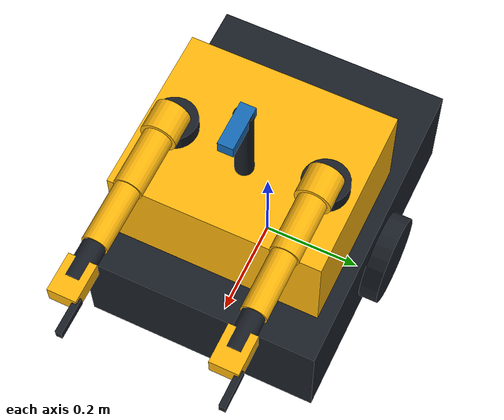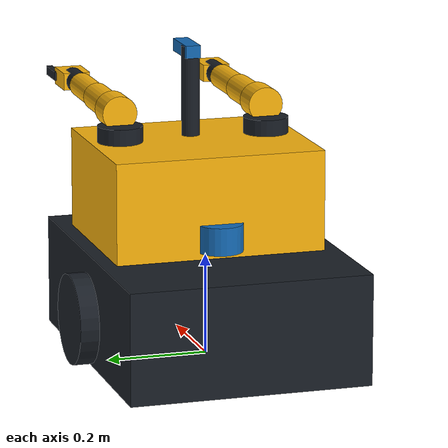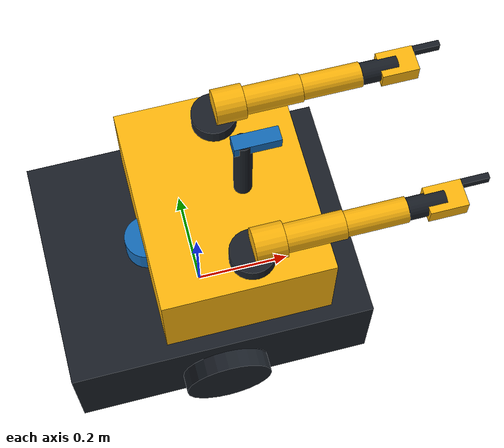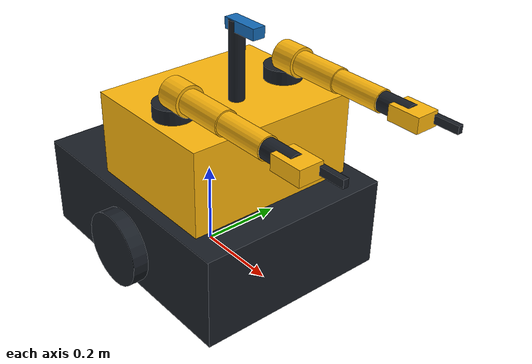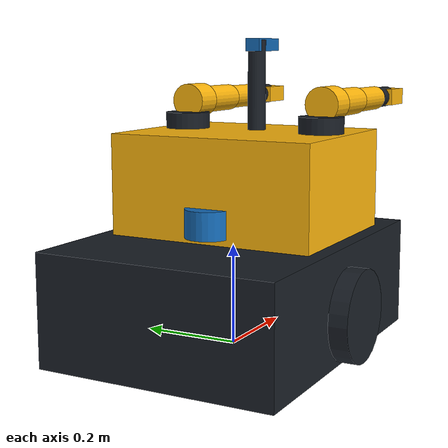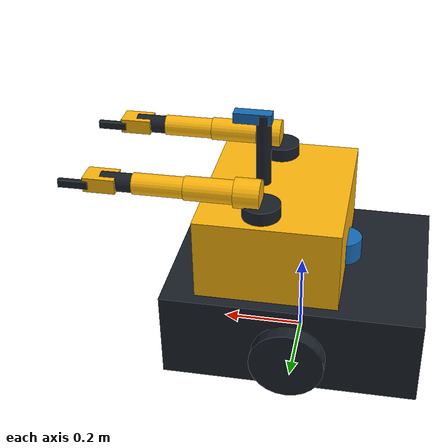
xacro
<?xml version="1.0"?>
<robot name="dual_so101_mobile" xmlns:xacro="http://www.ros.org/wiki/xacro">
  <xacro:arg name="use_mock_hardware" default="true"/>
  <xacro:include filename="so101_arm.xacro"/>
  <xacro:include filename="sensors.xacro"/>
  <xacro:include filename="ros2_control.xacro"/>

  <material name="dark"><color rgba="0.10 0.12 0.15 1"/></material>
  <material name="yellow"><color rgba="1.00 0.72 0.05 1"/></material>
  <material name="sensor_blue"><color rgba="0.08 0.42 0.72 1"/></material>

  <link name="base_footprint"/>
  <link name="base_link">
    <visual><origin xyz="0 0 0.11"/><geometry><box size="0.62 0.48 0.22"/></geometry><material name="dark"/></visual>
    <collision><origin xyz="0 0 0.11"/><geometry><box size="0.62 0.48 0.22"/></geometry></collision>
    <inertial><origin xyz="0 0 0.11"/><mass value="18.0"/><inertia ixx="0.42" ixy="0" ixz="0" iyy="0.58" iyz="0" izz="0.78"/></inertial>
  </link>
  <joint name="base_footprint_joint" type="fixed"><parent link="base_footprint"/><child link="base_link"/></joint>

  <link name="left_wheel_link"><visual><geometry><cylinder radius="0.09" length="0.045"/></geometry><material name="dark"/></visual><collision><geometry><cylinder radius="0.09" length="0.045"/></geometry></collision><inertial><mass value="0.8"/><inertia ixx="0.003" ixy="0" ixz="0" iyy="0.003" iyz="0" izz="0.003"/></inertial></link>
  <joint name="left_wheel_joint" type="continuous"><parent link="base_link"/><child link="left_wheel_link"/><origin xyz="0 0.255 0.09" rpy="1.570796 0 0"/><axis xyz="0 0 1"/><limit effort="20" velocity="12"/></joint>
  <link name="right_wheel_link"><visual><geometry><cylinder radius="0.09" length="0.045"/></geometry><material name="dark"/></visual><collision><geometry><cylinder radius="0.09" length="0.045"/></geometry></collision><inertial><mass value="0.8"/><inertia ixx="0.003" ixy="0" ixz="0" iyy="0.003" iyz="0" izz="0.003"/></inertial></link>
  <joint name="right_wheel_joint" type="continuous"><parent link="base_link"/><child link="right_wheel_link"/><origin xyz="0 -0.255 0.09" rpy="1.570796 0 0"/><axis xyz="0 0 1"/><limit effort="20" velocity="12"/></joint>

  <link name="torso_link">
    <visual><origin xyz="0 0 0.10"/><geometry><box size="0.34 0.42 0.20"/></geometry><material name="yellow"/></visual>
    <collision><origin xyz="0 0 0.10"/><geometry><box size="0.34 0.42 0.20"/></geometry></collision>
    <inertial><origin xyz="0 0 0.10"/><mass value="3.0"/><inertia ixx="0.06" ixy="0" ixz="0" iyy="0.04" iyz="0" izz="0.07"/></inertial>
  </link>
  <joint name="torso_joint" type="fixed"><parent link="base_link"/><child link="torso_link"/><origin xyz="0.06 0 0.22"/></joint>

  <xacro:so101_arm prefix="left_" parent="torso_link" xyz="0.02 0.15 0.20" rpy="0 0 0"/>
  <xacro:so101_arm prefix="right_" parent="torso_link" xyz="0.02 -0.15 0.20" rpy="0 0 0"/>
  <xacro:sensor_suite parent="base_link"/>
  <xacro:dual_so101_control use_mock_hardware="$(arg use_mock_hardware)"/>
</robot>

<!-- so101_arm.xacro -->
<robot xmlns:xacro="http://www.ros.org/wiki/xacro">
  <!-- Primitive collision model with SO101-Nexus-compatible joint names and limits. -->
  <xacro:macro name="arm_link" params="name length radius mass color">
    <link name="${name}">
      <visual>
        <origin xyz="${length / 2.0} 0 0" rpy="0 ${pi / 2.0} 0"/>
        <geometry><cylinder radius="${radius}" length="${length}"/></geometry>
        <material name="${color}"/>
      </visual>
      <collision>
        <origin xyz="${length / 2.0} 0 0" rpy="0 ${pi / 2.0} 0"/>
        <geometry><cylinder radius="${radius}" length="${length}"/></geometry>
      </collision>
      <inertial>
        <origin xyz="${length / 2.0} 0 0"/>
        <mass value="${mass}"/>
        <inertia ixx="0.00010" ixy="0" ixz="0" iyy="0.00030" iyz="0" izz="0.00030"/>
      </inertial>
    </link>
  </xacro:macro>

  <xacro:macro name="so101_arm" params="prefix parent xyz rpy">
    <link name="${prefix}base_link">
      <visual><geometry><cylinder radius="0.045" length="0.065"/></geometry><material name="dark"/></visual>
      <collision><geometry><cylinder radius="0.045" length="0.065"/></geometry></collision>
      <inertial><mass value="0.147"/><inertia ixx="0.00014" ixy="0" ixz="0" iyy="0.00014" iyz="0" izz="0.00013"/></inertial>
    </link>
    <joint name="${prefix}mount_joint" type="fixed">
      <parent link="${parent}"/><child link="${prefix}base_link"/><origin xyz="${xyz}" rpy="${rpy}"/>
    </joint>

    <xacro:arm_link name="${prefix}shoulder_link" length="0.060" radius="0.035" mass="0.100" color="yellow"/>
    <joint name="${prefix}shoulder_pan" type="revolute">
      <parent link="${prefix}base_link"/><child link="${prefix}shoulder_link"/>
      <origin xyz="0 0 0.055"/><axis xyz="0 0 1"/>
      <limit lower="-1.91986" upper="1.91986" effort="10" velocity="1.5"/>
    </joint>

    <xacro:arm_link name="${prefix}upper_arm_link" length="0.120" radius="0.028" mass="0.103" color="yellow"/>
    <joint name="${prefix}shoulder_lift" type="revolute">
      <parent link="${prefix}shoulder_link"/><child link="${prefix}upper_arm_link"/>
      <origin xyz="0.055 0 0"/><axis xyz="0 1 0"/>
      <limit lower="-1.74533" upper="1.74533" effort="10" velocity="1.5"/>
    </joint>

    <xacro:arm_link name="${prefix}lower_arm_link" length="0.120" radius="0.025" mass="0.104" color="yellow"/>
    <joint name="${prefix}elbow_flex" type="revolute">
      <parent link="${prefix}upper_arm_link"/><child link="${prefix}lower_arm_link"/>
      <origin xyz="0.120 0 0"/><axis xyz="0 1 0"/>
      <limit lower="-1.69" upper="1.69" effort="10" velocity="1.5"/>
    </joint>

    <xacro:arm_link name="${prefix}wrist_link" length="0.075" radius="0.022" mass="0.079" color="dark"/>
    <joint name="${prefix}wrist_flex" type="revolute">
      <parent link="${prefix}lower_arm_link"/><child link="${prefix}wrist_link"/>
      <origin xyz="0.120 0 0"/><axis xyz="0 1 0"/>
      <limit lower="-1.65806" upper="1.65806" effort="10" velocity="2.0"/>
    </joint>

    <link name="${prefix}gripper_link">
      <visual><geometry><box size="0.075 0.055 0.035"/></geometry><material name="yellow"/></visual>
      <collision><geometry><box size="0.075 0.055 0.035"/></geometry></collision>
      <inertial><mass value="0.087"/><inertia ixx="0.00004" ixy="0" ixz="0" iyy="0.00004" iyz="0" izz="0.00004"/></inertial>
    </link>
    <joint name="${prefix}wrist_roll" type="revolute">
      <parent link="${prefix}wrist_link"/><child link="${prefix}gripper_link"/>
      <origin xyz="0.075 0 0"/><axis xyz="1 0 0"/>
      <limit lower="-2.74385" upper="2.84121" effort="10" velocity="2.0"/>
    </joint>

    <link name="${prefix}moving_jaw_link">
      <visual><origin xyz="0.035 0 0"/><geometry><box size="0.070 0.012 0.018"/></geometry><material name="dark"/></visual>
      <collision><origin xyz="0.035 0 0"/><geometry><box size="0.070 0.012 0.018"/></geometry></collision>
      <inertial><mass value="0.025"/><inertia ixx="0.00001" ixy="0" ixz="0" iyy="0.00002" iyz="0" izz="0.00002"/></inertial>
    </link>
    <joint name="${prefix}gripper" type="revolute">
      <parent link="${prefix}gripper_link"/><child link="${prefix}moving_jaw_link"/>
      <origin xyz="0.025 0.025 0"/><axis xyz="0 0 1"/>
      <limit lower="-0.174533" upper="1.74533" effort="10" velocity="2.0"/>
    </joint>

    <link name="${prefix}tcp_link"/>
    <joint name="${prefix}tcp_joint" type="fixed">
      <parent link="${prefix}gripper_link"/><child link="${prefix}tcp_link"/><origin xyz="0.085 0 0"/>
    </joint>
  </xacro:macro>
</robot>

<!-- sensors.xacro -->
<robot xmlns:xacro="http://www.ros.org/wiki/xacro">
  <xacro:macro name="sensor_suite" params="parent">
    <link name="sensor_mast_link">
      <visual><origin xyz="0 0 0.18"/><geometry><cylinder radius="0.018" length="0.36"/></geometry><material name="dark"/></visual>
      <collision><origin xyz="0 0 0.18"/><geometry><cylinder radius="0.018" length="0.36"/></geometry></collision>
      <inertial><mass value="0.25"/><inertia ixx="0.003" ixy="0" ixz="0" iyy="0.003" iyz="0" izz="0.0002"/></inertial>
    </link>
    <joint name="sensor_mast_joint" type="fixed"><parent link="${parent}"/><child link="sensor_mast_link"/><origin xyz="0.10 0 0.24"/></joint>

    <link name="head_rgbd_link">
      <visual><geometry><box size="0.090 0.030 0.025"/></geometry><material name="sensor_blue"/></visual>
      <collision><geometry><box size="0.090 0.030 0.025"/></geometry></collision>
      <inertial><mass value="0.08"/><inertia ixx="0.00002" ixy="0" ixz="0" iyy="0.00005" iyz="0" izz="0.00005"/></inertial>
    </link>
    <joint name="head_rgbd_joint" type="fixed"><parent link="sensor_mast_link"/><child link="head_rgbd_link"/><origin xyz="0.025 0 0.35"/></joint>
    <link name="head_rgbd_color_optical_frame"/>
    <joint name="head_rgbd_color_optical_joint" type="fixed"><parent link="head_rgbd_link"/><child link="head_rgbd_color_optical_frame"/><origin rpy="-1.570796 0 -1.570796"/></joint>
    <link name="head_rgbd_depth_optical_frame"/>
    <joint name="head_rgbd_depth_optical_joint" type="fixed"><parent link="head_rgbd_link"/><child link="head_rgbd_depth_optical_frame"/><origin xyz="0 -0.015 0" rpy="-1.570796 0 -1.570796"/></joint>

    <link name="lidar_link">
      <visual><geometry><cylinder radius="0.045" length="0.055"/></geometry><material name="sensor_blue"/></visual>
      <collision><geometry><cylinder radius="0.045" length="0.055"/></geometry></collision>
      <inertial><mass value="0.12"/><inertia ixx="0.00006" ixy="0" ixz="0" iyy="0.00006" iyz="0" izz="0.00010"/></inertial>
    </link>
    <joint name="lidar_joint" type="fixed"><parent link="${parent}"/><child link="lidar_link"/><origin xyz="-0.10 0 0.26"/></joint>

    <link name="imu_link"><inertial><mass value="0.01"/><inertia ixx="0.000001" ixy="0" ixz="0" iyy="0.000001" iyz="0" izz="0.000001"/></inertial></link>
    <joint name="imu_joint" type="fixed"><parent link="${parent}"/><child link="imu_link"/><origin xyz="0 0 0.12"/></joint>
  </xacro:macro>
</robot>
